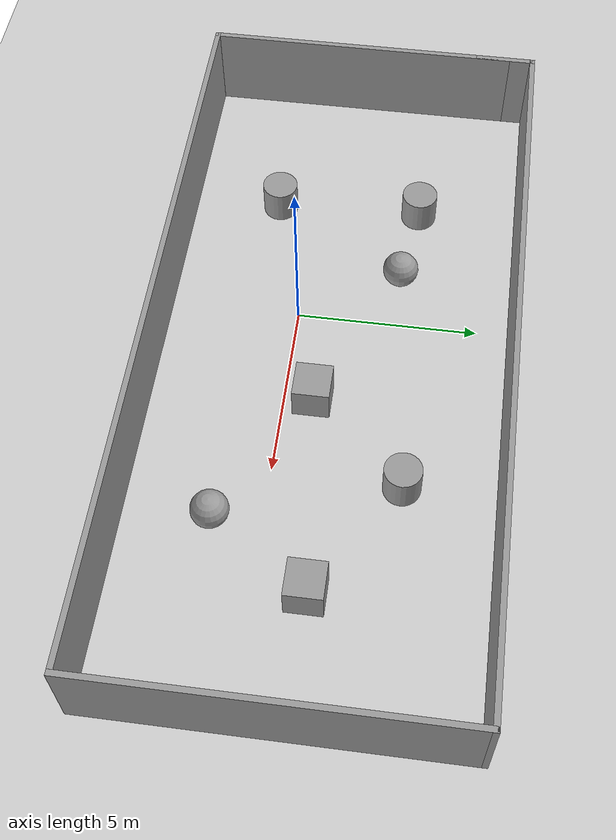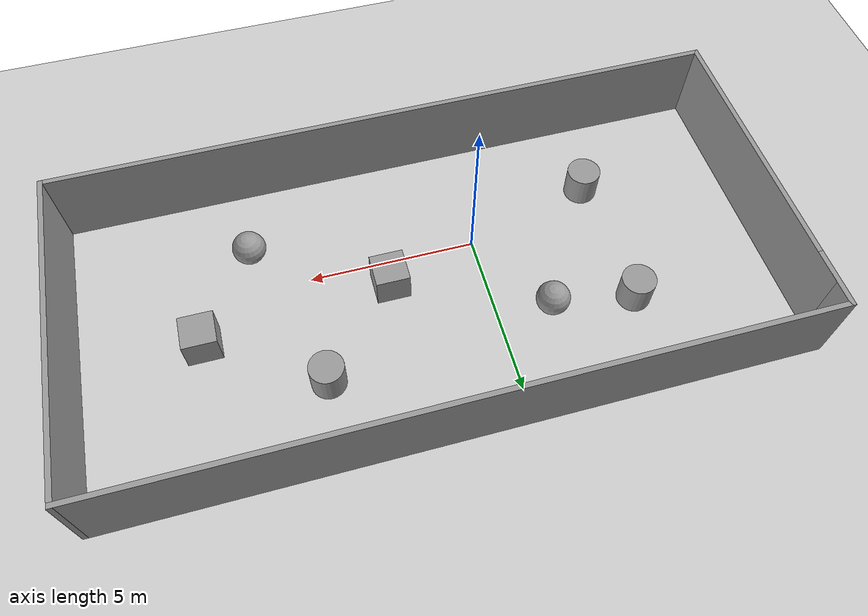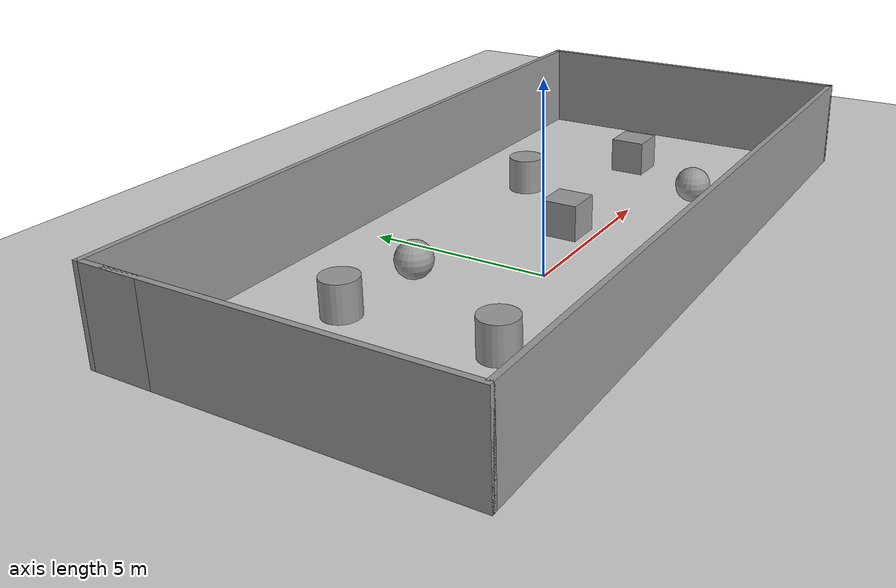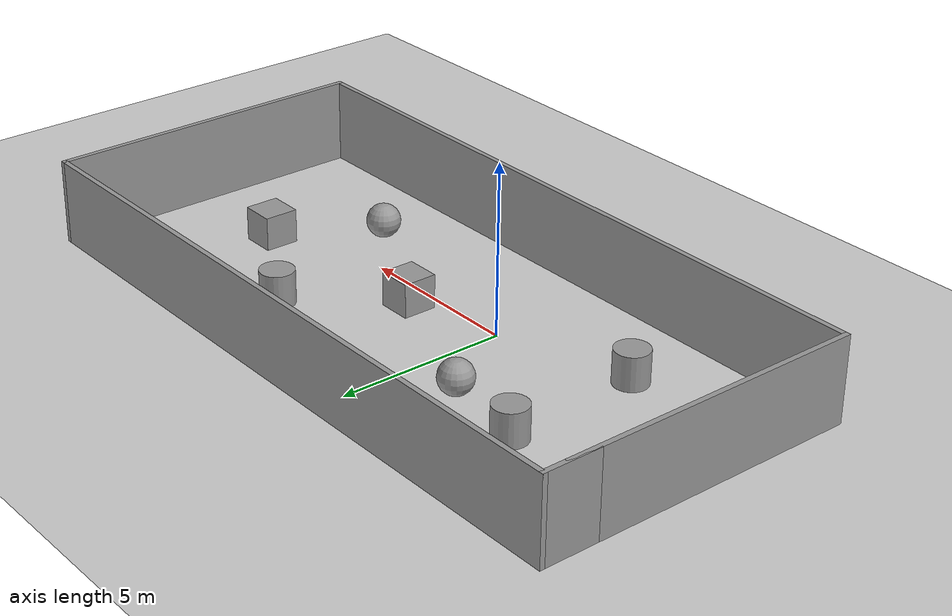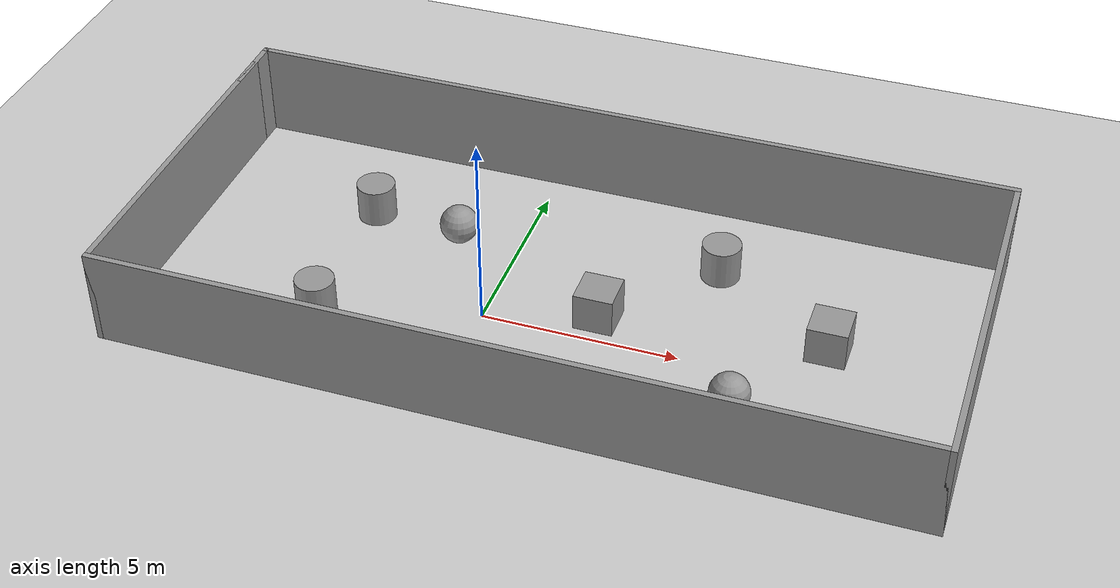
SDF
<sdf version="1.6">
 <world name="default">
  <plugin name="physics_plugin" filename="libgazebo_physics_plugin.so"/>
  <light name="sun" type="directional">
   <pose>0 0 10 0 -0 0</pose>
   <diffuse>0.8 0.8 0.8 1</diffuse>
   <specular>0.2 0.2 0.2 1</specular>
   <attenuation>
    <range>1000</range>
    <constant>0.9</constant>
    <linear>0.01</linear>
    <quadratic>0.001</quadratic>
   </attenuation>
   <direction>-0.5 0.1 -0.9</direction>
  </light>
  <model name="ground_plane">
   <static>1</static>
   <link name="link">
    <collision name="collision">
     <geometry><plane><normal>0 0 1</normal><size>100 100</size></plane></geometry>
     <surface>
      <contact><collide_bitmask>65535</collide_bitmask></contact>
      <friction><ode><mu>100</mu><mu2>50</mu2></ode></friction>
     </surface>
    </collision>
    <visual name="visual">
     <cast_shadows>0</cast_shadows>
     <geometry><plane><normal>0 0 1</normal><size>100 100</size></plane></geometry>
     <material>
      <script><uri>file://media/materials/scripts/gazebo.material</uri><name>Gazebo/Grey</name></script>
     </material>
    </visual>
   </link>
  </model>
  <gravity>0 0 -9.8</gravity>
  <magnetic_field>6e-06 2.3e-05 -4.2e-05</magnetic_field>
  <atmosphere type="adiabatic"/>
  <physics name="default_physics" default="0" type="ode">
   <max_step_size>0.001</max_step_size>
   <real_time_factor>1</real_time_factor>
   <real_time_update_rate>1000</real_time_update_rate>
  </physics>
  <scene><ambient>0.4 0.4 0.4 1</ambient><background>0.7 0.7 0.7 1</background><shadows>1</shadows></scene>
  <audio><device>default</device></audio>
  <spherical_coordinates>
   <surface_model>EARTH_WGS84</surface_model>
   <latitude_deg>0</latitude_deg>
   <longitude_deg>0</longitude_deg>
   <elevation>0</elevation>
   <heading_deg>0</heading_deg>
  </spherical_coordinates>
  <model name="67">
   <pose>1.70929 1.14073 0 0 -0 0</pose>
   <link name="Wall_21">
    <collision name="Wall_21_Collision">
     <geometry><box><size>9 0.15 2.5</size></box></geometry>
     <pose>0 0 1.25 0 -0 0</pose>
    </collision>
    <visual name="Wall_21_Visual">
     <pose>0 0 1.25 0 -0 0</pose>
     <geometry><box><size>9 0.15 2.5</size></box></geometry>
     <material>
      <script><uri>file://media/materials/scripts/gazebo.material</uri><name>Gazebo/Grey</name></script>
      <ambient>1 1 1 1</ambient>
     </material>
     <meta><layer>0</layer></meta>
    </visual>
    <pose>-10.175 -0.375 0 0 -0 -1.5708</pose>
   </link>
   <link name="Wall_22">
    <collision name="Wall_22_Collision">
     <geometry><box><size>20.5 0.15 2.5</size></box></geometry>
     <pose>0 0 1.25 0 -0 0</pose>
    </collision>
    <visual name="Wall_22_Visual">
     <pose>0 0 1.25 0 -0 0</pose>
     <geometry><box><size>20.5 0.15 2.5</size></box></geometry>
     <material>
      <script><uri>file://media/materials/scripts/gazebo.material</uri><name>Gazebo/Grey</name></script>
      <ambient>1 1 1 1</ambient>
     </material>
     <meta><layer>0</layer></meta>
    </visual>
    <pose>0 -4.8 0 0 -0 0</pose>
   </link>
   <link name="Wall_23">
    <collision name="Wall_23_Collision">
     <geometry><box><size>9.75 0.15 2.5</size></box></geometry>
     <pose>0 0 1.25 0 -0 0</pose>
    </collision>
    <visual name="Wall_23_Visual">
     <pose>0 0 1.25 0 -0 0</pose>
     <geometry><box><size>9.75 0.15 2.5</size></box></geometry>
     <material>
      <script><uri>file://media/materials/scripts/gazebo.material</uri><name>Gazebo/Grey</name></script>
      <ambient>1 1 1 1</ambient>
     </material>
     <meta><layer>0</layer></meta>
    </visual>
    <pose>10.175 0 0 0 -0 1.5708</pose>
   </link>
   <link name="Wall_24">
    <collision name="Wall_24_Collision">
     <geometry><box><size>20.5 0.15 2.5</size></box></geometry>
     <pose>0 0 1.25 0 -0 0</pose>
    </collision>
    <visual name="Wall_24_Visual">
     <pose>0 0 1.25 0 -0 0</pose>
     <geometry><box><size>20.5 0.15 2.5</size></box></geometry>
     <material>
      <script><uri>file://media/materials/scripts/gazebo.material</uri><name>Gazebo/Grey</name></script>
      <ambient>1 1 1 1</ambient>
     </material>
     <meta><layer>0</layer></meta>
    </visual>
    <pose>0 4.8 0 0 -0 3.14159</pose>
   </link>
   <link name="Wall_25">
    <collision name="Wall_25_Collision">
     <geometry><box><size>1.75 0.15 2.5</size></box></geometry>
     <pose>0 0 1.25 0 -0 0</pose>
    </collision>
    <visual name="Wall_25_Visual">
     <pose>0 0 1.25 0 -0 0</pose>
     <geometry><box><size>1.75 0.15 2.5</size></box></geometry>
     <material>
      <script><uri>file://media/materials/scripts/gazebo.material</uri><name>Gazebo/Grey</name></script>
      <ambient>1 1 1 1</ambient>
     </material>
     <meta><layer>0</layer></meta>
    </visual>
    <pose>-10.175 4 0 0 -0 -1.5708</pose>
   </link>
   <static>1</static>
  </model>
  <model name="67_0">
   <link name="link_1">
    <inertial>
     <mass>1</mass>
     <inertia><ixx>0.145833</ixx><ixy>0</ixy><ixz>0</ixz><iyy>0.145833</iyy><iyz>0</iyz><izz>0.125</izz></inertia>
    </inertial>
    <pose>-5.81898 -2.36618 0 0 -0 0</pose>
    <visual name="visual">
     <geometry><cylinder><radius>0.5</radius><length>1</length></cylinder></geometry>
     <material>
      <lighting>1</lighting>
      <script><uri>file://media/materials/scripts/gazebo.material</uri><name>Gazebo/Grey</name></script>
     </material>
    </visual>
    <collision name="collision">
     <geometry><cylinder><radius>0.5</radius><length>1</length></cylinder></geometry>
     <surface>
      <friction>
       <ode><mu>1</mu><mu2>1</mu2><fdir1>0 0 0</fdir1><slip1>0</slip1><slip2>0</slip2></ode>
       <torsional>
        <coefficient>1</coefficient>
        <patch_radius>0</patch_radius>
        <surface_radius>0</surface_radius>
        <use_patch_radius>1</use_patch_radius>
        <ode><slip>0</slip></ode>
       </torsional>
      </friction>
      <bounce><restitution_coefficient>0</restitution_coefficient><threshold>1e+06</threshold></bounce>
      <contact>
       <collide_without_contact>0</collide_without_contact>
       <collide_without_contact_bitmask>1</collide_without_contact_bitmask>
       <collide_bitmask>1</collide_bitmask>
       <ode>
        <soft_cfm>0</soft_cfm>
        <soft_erp>0.2</soft_erp>
        <kp>1e+13</kp>
        <kd>1</kd>
        <max_vel>0.01</max_vel>
        <min_depth>0</min_depth>
       </ode>
       <bullet>
        <split_impulse>1</split_impulse>
        <split_impulse_penetration_threshold>-0.01</split_impulse_penetration_threshold>
        <soft_cfm>0</soft_cfm>
        <soft_erp>0.2</soft_erp>
        <kp>1e+13</kp>
        <kd>1</kd>
       </bullet>
      </contact>
     </surface>
    </collision>
   </link>
   <link name="link_2">
    <inertial>
     <mass>1</mass>
     <inertia><ixx>0.1</ixx><ixy>0</ixy><ixz>0</ixz><iyy>0.1</iyy><iyz>0</iyz><izz>0.1</izz></inertia>
    </inertial>
    <pose>-3.51357 1.43658 0 0 -0 0</pose>
    <visual name="visual">
     <geometry><sphere><radius>0.5</radius></sphere></geometry>
     <material>
      <lighting>1</lighting>
      <script><uri>file://media/materials/scripts/gazebo.material</uri><name>Gazebo/Grey</name></script>
     </material>
    </visual>
    <collision name="collision">
     <geometry><sphere><radius>0.5</radius></sphere></geometry>
     <surface>
      <friction>
       <ode><mu>1</mu><mu2>1</mu2><fdir1>0 0 0</fdir1><slip1>0</slip1><slip2>0</slip2></ode>
       <torsional>
        <coefficient>1</coefficient>
        <patch_radius>0</patch_radius>
        <surface_radius>0</surface_radius>
        <use_patch_radius>1</use_patch_radius>
        <ode><slip>0</slip></ode>
       </torsional>
      </friction>
      <bounce><restitution_coefficient>0</restitution_coefficient><threshold>1e+06</threshold></bounce>
      <contact>
       <collide_without_contact>0</collide_without_contact>
       <collide_without_contact_bitmask>1</collide_without_contact_bitmask>
       <collide_bitmask>1</collide_bitmask>
       <ode>
        <soft_cfm>0</soft_cfm>
        <soft_erp>0.2</soft_erp>
        <kp>1e+13</kp>
        <kd>1</kd>
        <max_vel>0.01</max_vel>
        <min_depth>0</min_depth>
       </ode>
       <bullet>
        <split_impulse>1</split_impulse>
        <split_impulse_penetration_threshold>-0.01</split_impulse_penetration_threshold>
        <soft_cfm>0</soft_cfm>
        <soft_erp>0.2</soft_erp>
        <kp>1e+13</kp>
        <kd>1</kd>
       </bullet>
      </contact>
     </surface>
    </collision>
   </link>
   <link name="link_3">
    <inertial>
     <mass>1</mass>
     <inertia>
      <ixx>0.166667</ixx>
      <ixy>0</ixy>
      <ixz>0</ixz>
      <iyy>0.166667</iyy>
      <iyz>0</iyz>
      <izz>0.166667</izz>
     </inertia>
    </inertial>
    <pose>0.862723 -0.4885 0 0 -0 0</pose>
    <visual name="visual">
     <geometry><box><size>1 1 1</size></box></geometry>
     <material>
      <lighting>1</lighting>
      <script><uri>file://media/materials/scripts/gazebo.material</uri><name>Gazebo/Grey</name></script>
     </material>
    </visual>
    <collision name="collision">
     <geometry><box><size>1 1 1</size></box></geometry>
     <surface>
      <friction>
       <ode><mu>1</mu><mu2>1</mu2><fdir1>0 0 0</fdir1><slip1>0</slip1><slip2>0</slip2></ode>
       <torsional>
        <coefficient>1</coefficient>
        <patch_radius>0</patch_radius>
        <surface_radius>0</surface_radius>
        <use_patch_radius>1</use_patch_radius>
        <ode><slip>0</slip></ode>
       </torsional>
      </friction>
      <bounce><restitution_coefficient>0</restitution_coefficient><threshold>1e+06</threshold></bounce>
      <contact>
       <collide_without_contact>0</collide_without_contact>
       <collide_without_contact_bitmask>1</collide_without_contact_bitmask>
       <collide_bitmask>1</collide_bitmask>
       <ode>
        <soft_cfm>0</soft_cfm>
        <soft_erp>0.2</soft_erp>
        <kp>1e+13</kp>
        <kd>1</kd>
        <max_vel>0.01</max_vel>
        <min_depth>0</min_depth>
       </ode>
       <bullet>
        <split_impulse>1</split_impulse>
        <split_impulse_penetration_threshold>-0.01</split_impulse_penetration_threshold>
        <soft_cfm>0</soft_cfm>
        <soft_erp>0.2</soft_erp>
        <kp>1e+13</kp>
        <kd>1</kd>
       </bullet>
      </contact>
     </surface>
    </collision>
   </link>
   <link name="link_4">
    <inertial>
     <mass>1</mass>
     <inertia><ixx>0.1</ixx><ixy>0</ixy><ixz>0</ixz><iyy>0.1</iyy><iyz>0</iyz><izz>0.1</izz></inertia>
    </inertial>
    <pose>4.69537 -2.57501 0 0 -0 0</pose>
    <visual name="visual">
     <geometry><sphere><radius>0.5</radius></sphere></geometry>
     <material>
      <lighting>1</lighting>
      <script><uri>file://media/materials/scripts/gazebo.material</uri><name>Gazebo/Grey</name></script>
     </material>
    </visual>
    <collision name="collision">
     <geometry><sphere><radius>0.5</radius></sphere></geometry>
     <surface>
      <friction>
       <ode><mu>1</mu><mu2>1</mu2><fdir1>0 0 0</fdir1><slip1>0</slip1><slip2>0</slip2></ode>
       <torsional>
        <coefficient>1</coefficient>
        <patch_radius>0</patch_radius>
        <surface_radius>0</surface_radius>
        <use_patch_radius>1</use_patch_radius>
        <ode><slip>0</slip></ode>
       </torsional>
      </friction>
      <bounce><restitution_coefficient>0</restitution_coefficient><threshold>1e+06</threshold></bounce>
      <contact>
       <collide_without_contact>0</collide_without_contact>
       <collide_without_contact_bitmask>1</collide_without_contact_bitmask>
       <collide_bitmask>1</collide_bitmask>
       <ode>
        <soft_cfm>0</soft_cfm>
        <soft_erp>0.2</soft_erp>
        <kp>1e+13</kp>
        <kd>1</kd>
        <max_vel>0.01</max_vel>
        <min_depth>0</min_depth>
       </ode>
       <bullet>
        <split_impulse>1</split_impulse>
        <split_impulse_penetration_threshold>-0.01</split_impulse_penetration_threshold>
        <soft_cfm>0</soft_cfm>
        <soft_erp>0.2</soft_erp>
        <kp>1e+13</kp>
        <kd>1</kd>
       </bullet>
      </contact>
     </surface>
    </collision>
   </link>
   <link name="link_5">
    <inertial>
     <mass>1</mass>
     <inertia><ixx>0.145833</ixx><ixy>0</ixy><ixz>0</ixz><iyy>0.145833</iyy><iyz>0</iyz><izz>0.125</izz></inertia>
    </inertial>
    <pose>3.25352 2.13818 0 0 -0 0</pose>
    <visual name="visual">
     <geometry><cylinder><radius>0.5</radius><length>1</length></cylinder></geometry>
     <material>
      <lighting>1</lighting>
      <script><uri>file://media/materials/scripts/gazebo.material</uri><name>Gazebo/Grey</name></script>
     </material>
    </visual>
    <collision name="collision">
     <geometry><cylinder><radius>0.5</radius><length>1</length></cylinder></geometry>
     <surface>
      <friction>
       <ode><mu>1</mu><mu2>1</mu2><fdir1>0 0 0</fdir1><slip1>0</slip1><slip2>0</slip2></ode>
       <torsional>
        <coefficient>1</coefficient>
        <patch_radius>0</patch_radius>
        <surface_radius>0</surface_radius>
        <use_patch_radius>1</use_patch_radius>
        <ode><slip>0</slip></ode>
       </torsional>
      </friction>
      <bounce><restitution_coefficient>0</restitution_coefficient><threshold>1e+06</threshold></bounce>
      <contact>
       <collide_without_contact>0</collide_without_contact>
       <collide_without_contact_bitmask>1</collide_without_contact_bitmask>
       <collide_bitmask>1</collide_bitmask>
       <ode>
        <soft_cfm>0</soft_cfm>
        <soft_erp>0.2</soft_erp>
        <kp>1e+13</kp>
        <kd>1</kd>
        <max_vel>0.01</max_vel>
        <min_depth>0</min_depth>
       </ode>
       <bullet>
        <split_impulse>1</split_impulse>
        <split_impulse_penetration_threshold>-0.01</split_impulse_penetration_threshold>
        <soft_cfm>0</soft_cfm>
        <soft_erp>0.2</soft_erp>
        <kp>1e+13</kp>
        <kd>1</kd>
       </bullet>
      </contact>
     </surface>
    </collision>
   </link>
   <link name="link_7">
    <inertial>
     <mass>1</mass>
     <inertia>
      <ixx>0.166667</ixx>
      <ixy>0</ixy>
      <ixz>0</ixz>
      <iyy>0.166667</iyy>
      <iyz>0</iyz>
      <izz>0.166667</izz>
     </inertia>
    </inertial>
    <pose>6.46943 0.105289 0 0 -0 0</pose>
    <visual name="visual">
     <geometry><box><size>1 1 1</size></box></geometry>
     <material>
      <lighting>1</lighting>
      <script><uri>file://media/materials/scripts/gazebo.material</uri><name>Gazebo/Grey</name></script>
     </material>
    </visual>
    <collision name="collision">
     <geometry><box><size>1 1 1</size></box></geometry>
     <surface>
      <friction>
       <ode><mu>1</mu><mu2>1</mu2><fdir1>0 0 0</fdir1><slip1>0</slip1><slip2>0</slip2></ode>
       <torsional>
        <coefficient>1</coefficient>
        <patch_radius>0</patch_radius>
        <surface_radius>0</surface_radius>
        <use_patch_radius>1</use_patch_radius>
        <ode><slip>0</slip></ode>
       </torsional>
      </friction>
      <bounce><restitution_coefficient>0</restitution_coefficient><threshold>1e+06</threshold></bounce>
      <contact>
       <collide_without_contact>0</collide_without_contact>
       <collide_without_contact_bitmask>1</collide_without_contact_bitmask>
       <collide_bitmask>1</collide_bitmask>
       <ode>
        <soft_cfm>0</soft_cfm>
        <soft_erp>0.2</soft_erp>
        <kp>1e+13</kp>
        <kd>1</kd>
        <max_vel>0.01</max_vel>
        <min_depth>0</min_depth>
       </ode>
       <bullet>
        <split_impulse>1</split_impulse>
        <split_impulse_penetration_threshold>-0.01</split_impulse_penetration_threshold>
        <soft_cfm>0</soft_cfm>
        <soft_erp>0.2</soft_erp>
        <kp>1e+13</kp>
        <kd>1</kd>
       </bullet>
      </contact>
     </surface>
    </collision>
   </link>
   <link name="link_8">
    <inertial>
     <mass>1</mass>
     <inertia><ixx>0.145833</ixx><ixy>0</ixy><ixz>0</ixz><iyy>0.145833</iyy><iyz>0</iyz><izz>0.125</izz></inertia>
    </inertial>
    <pose>-5.94849 1.74965 0 0 -0 0</pose>
    <visual name="visual">
     <geometry><cylinder><radius>0.5</radius><length>1</length></cylinder></geometry>
     <material>
      <lighting>1</lighting>
      <script><uri>file://media/materials/scripts/gazebo.material</uri><name>Gazebo/Grey</name></script>
     </material>
    </visual>
    <collision name="collision">
     <geometry><cylinder><radius>0.5</radius><length>1</length></cylinder></geometry>
     <surface>
      <friction>
       <ode><mu>1</mu><mu2>1</mu2><fdir1>0 0 0</fdir1><slip1>0</slip1><slip2>0</slip2></ode>
       <torsional>
        <coefficient>1</coefficient>
        <patch_radius>0</patch_radius>
        <surface_radius>0</surface_radius>
        <use_patch_radius>1</use_patch_radius>
        <ode><slip>0</slip></ode>
       </torsional>
      </friction>
      <bounce><restitution_coefficient>0</restitution_coefficient><threshold>1e+06</threshold></bounce>
      <contact>
       <collide_without_contact>0</collide_without_contact>
       <collide_without_contact_bitmask>1</collide_without_contact_bitmask>
       <collide_bitmask>1</collide_bitmask>
       <ode>
        <soft_cfm>0</soft_cfm>
        <soft_erp>0.2</soft_erp>
        <kp>1e+13</kp>
        <kd>1</kd>
        <max_vel>0.01</max_vel>
        <min_depth>0</min_depth>
       </ode>
       <bullet>
        <split_impulse>1</split_impulse>
        <split_impulse_penetration_threshold>-0.01</split_impulse_penetration_threshold>
        <soft_cfm>0</soft_cfm>
        <soft_erp>0.2</soft_erp>
        <kp>1e+13</kp>
        <kd>1</kd>
       </bullet>
      </contact>
     </surface>
    </collision>
   </link>
   <static>0</static>
   <pose>1.88478 1.27364 0.5 0 -0 0</pose>
  </model>
 </world>
</sdf>
